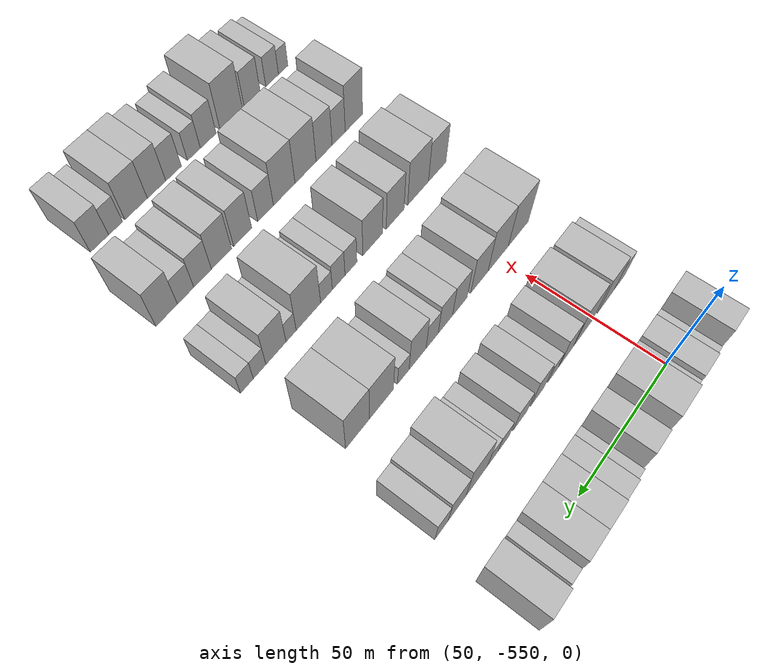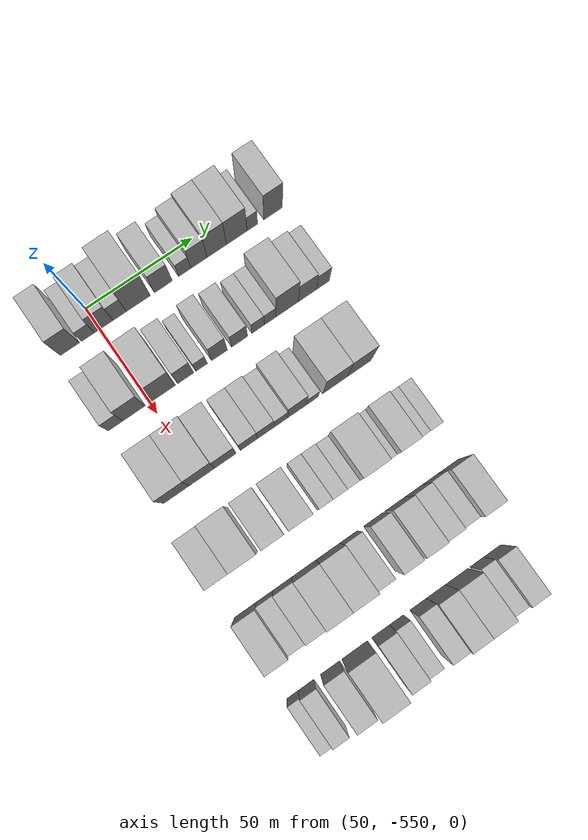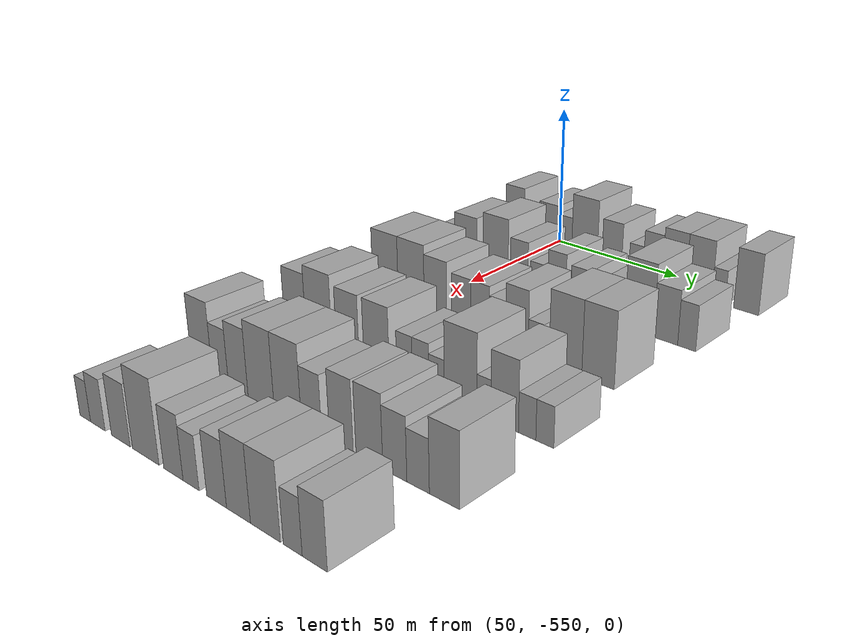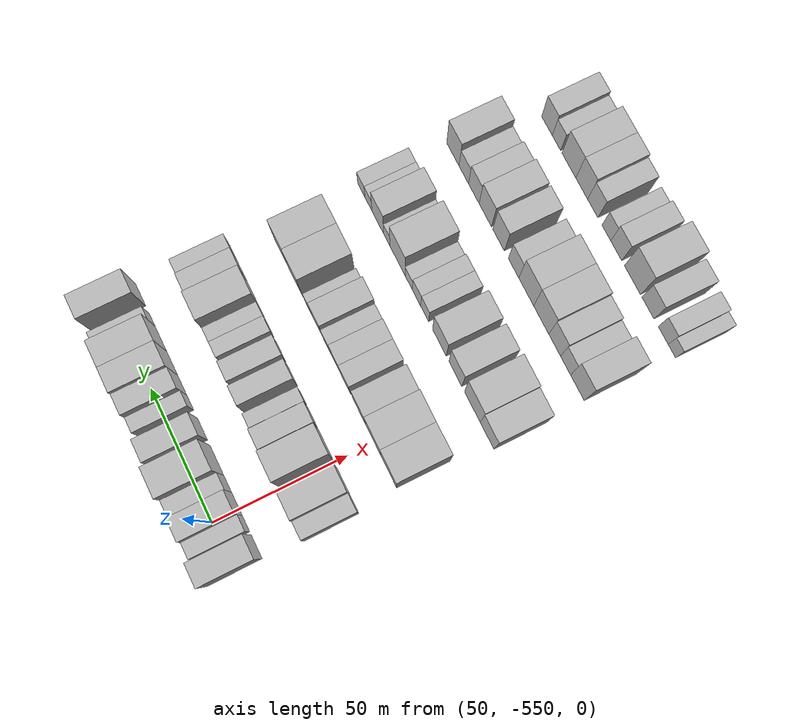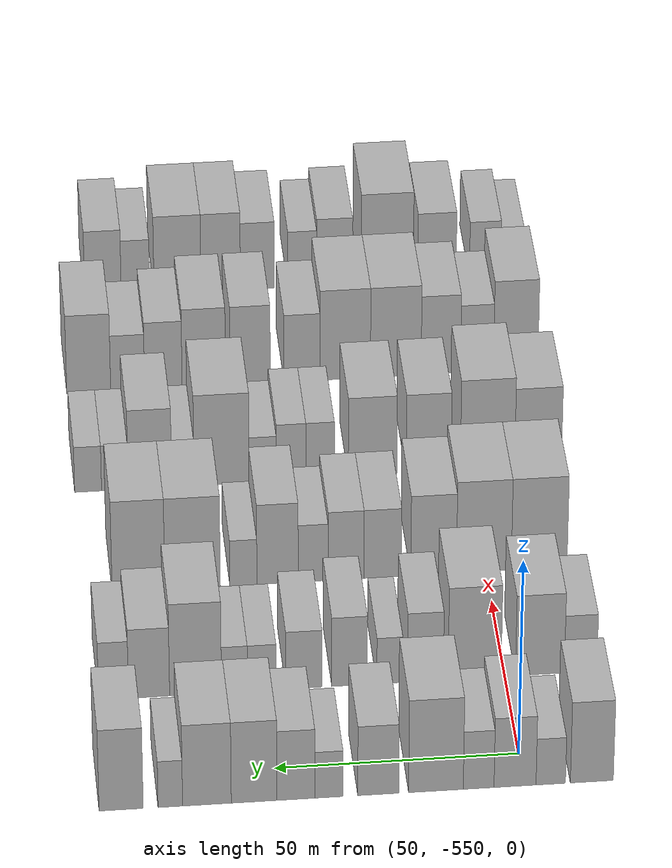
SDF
<sdf version="1.6">
 <world name="default">
  <model name="building_1">
   <static>1</static>
   <pose>50.0000 -563.6342 0 0.000000 0.000000 0.000000</pose>
   <link name="link">
    <pose>0 0 10.50 0 0 0</pose>
    <collision name="collision"><geometry><box><size>20.0000 8.7316 21.0000</size></box></geometry></collision>
    <visual name="visual">
     <cast_shadows>0</cast_shadows>
     <geometry><box><size>20.0000 8.7316 21.0000</size></box></geometry>
     <material>
      <script>
       <uri>model://HANNAS_wall/materials/scripts</uri>
       <uri>model://HANNAS_wall/materials/textures</uri>
       <name>vrc/HANNAS_wall</name>
      </script>
     </material>
    </visual>
   </link>
  </model>
  <model name="building_2">
   <static>1</static>
   <pose>50.0000 -555.2712 0 0.000000 0.000000 0.000000</pose>
   <link name="link">
    <pose>0 0 6.00 0 0 0</pose>
    <collision name="collision"><geometry><box><size>20.0000 5.9944 12.0000</size></box></geometry></collision>
    <visual name="visual">
     <cast_shadows>0</cast_shadows>
     <geometry><box><size>20.0000 5.9944 12.0000</size></box></geometry>
     <material>
      <script>
       <uri>model://HANNAS_wall/materials/scripts</uri>
       <uri>model://HANNAS_wall/materials/textures</uri>
       <name>vrc/HANNAS_wall</name>
      </script>
     </material>
    </visual>
   </link>
  </model>
  <model name="building_3">
   <static>1</static>
   <pose>50.0000 -548.0050 0 0.000000 0.000000 0.000000</pose>
   <link name="link">
    <pose>0 0 9.00 0 0 0</pose>
    <collision name="collision"><geometry><box><size>20.0000 8.5379 18.0000</size></box></geometry></collision>
    <visual name="visual">
     <cast_shadows>0</cast_shadows>
     <geometry><box><size>20.0000 8.5379 18.0000</size></box></geometry>
     <material>
      <script>
       <uri>model://HANNAS_wall/materials/scripts</uri>
       <uri>model://HANNAS_wall/materials/textures</uri>
       <name>vrc/HANNAS_wall</name>
      </script>
     </material>
    </visual>
   </link>
  </model>
  <model name="building_4">
   <static>1</static>
   <pose>50.0000 -540.6116 0 0.000000 0.000000 0.000000</pose>
   <link name="link">
    <pose>0 0 7.50 0 0 0</pose>
    <collision name="collision"><geometry><box><size>20.0000 6.2488 15.0000</size></box></geometry></collision>
    <visual name="visual">
     <cast_shadows>0</cast_shadows>
     <geometry><box><size>20.0000 6.2488 15.0000</size></box></geometry>
     <material>
      <script>
       <uri>model://HANNAS_wall/materials/scripts</uri>
       <uri>model://HANNAS_wall/materials/textures</uri>
       <name>vrc/HANNAS_wall</name>
      </script>
     </material>
    </visual>
   </link>
  </model>
  <model name="building_5">
   <static>1</static>
   <pose>50.0000 -531.9347 0 0.000000 0.000000 0.000000</pose>
   <link name="link">
    <pose>0 0 12.00 0 0 0</pose>
    <collision name="collision"><geometry><box><size>20.0000 11.1050 24.0000</size></box></geometry></collision>
    <visual name="visual">
     <cast_shadows>0</cast_shadows>
     <geometry><box><size>20.0000 11.1050 24.0000</size></box></geometry>
     <material>
      <script>
       <uri>model://HANNAS_wall/materials/scripts</uri>
       <uri>model://HANNAS_wall/materials/textures</uri>
       <name>vrc/HANNAS_wall</name>
      </script>
     </material>
    </visual>
   </link>
  </model>
  <model name="building_6">
   <static>1</static>
   <pose>50.0000 -520.2253 0 0.000000 0.000000 0.000000</pose>
   <link name="link">
    <pose>0 0 9.00 0 0 0</pose>
    <collision name="collision"><geometry><box><size>20.0000 8.3139 18.0000</size></box></geometry></collision>
    <visual name="visual">
     <cast_shadows>0</cast_shadows>
     <geometry><box><size>20.0000 8.3139 18.0000</size></box></geometry>
     <material>
      <script>
       <uri>model://HANNAS_wall/materials/scripts</uri>
       <uri>model://HANNAS_wall/materials/textures</uri>
       <name>vrc/HANNAS_wall</name>
      </script>
     </material>
    </visual>
   </link>
  </model>
  <model name="building_7">
   <static>1</static>
   <pose>50.0000 -510.2209 0 0.000000 0.000000 0.000000</pose>
   <link name="link">
    <pose>0 0 6.00 0 0 0</pose>
    <collision name="collision"><geometry><box><size>20.0000 5.6948 12.0000</size></box></geometry></collision>
    <visual name="visual">
     <cast_shadows>0</cast_shadows>
     <geometry><box><size>20.0000 5.6948 12.0000</size></box></geometry>
     <material>
      <script>
       <uri>model://HANNAS_wall/materials/scripts</uri>
       <uri>model://HANNAS_wall/materials/textures</uri>
       <name>vrc/HANNAS_wall</name>
      </script>
     </material>
    </visual>
   </link>
  </model>
  <model name="building_8">
   <static>1</static>
   <pose>50.0000 -503.5285 0 0.000000 0.000000 0.000000</pose>
   <link name="link">
    <pose>0 0 9.00 0 0 0</pose>
    <collision name="collision"><geometry><box><size>20.0000 7.6900 18.0000</size></box></geometry></collision>
    <visual name="visual">
     <cast_shadows>0</cast_shadows>
     <geometry><box><size>20.0000 7.6900 18.0000</size></box></geometry>
     <material>
      <script>
       <uri>model://HANNAS_wall/materials/scripts</uri>
       <uri>model://HANNAS_wall/materials/textures</uri>
       <name>vrc/HANNAS_wall</name>
      </script>
     </material>
    </visual>
   </link>
  </model>
  <model name="building_9">
   <static>1</static>
   <pose>50.0000 -495.0723 0 0.000000 0.000000 0.000000</pose>
   <link name="link">
    <pose>0 0 10.50 0 0 0</pose>
    <collision name="collision"><geometry><box><size>20.0000 9.2223 21.0000</size></box></geometry></collision>
    <visual name="visual">
     <cast_shadows>0</cast_shadows>
     <geometry><box><size>20.0000 9.2223 21.0000</size></box></geometry>
     <material>
      <script>
       <uri>model://HANNAS_wall/materials/scripts</uri>
       <uri>model://HANNAS_wall/materials/textures</uri>
       <name>vrc/HANNAS_wall</name>
      </script>
     </material>
    </visual>
   </link>
  </model>
  <model name="building_10">
   <static>1</static>
   <pose>50.0000 -485.5400 0 0.000000 0.000000 0.000000</pose>
   <link name="link">
    <pose>0 0 10.50 0 0 0</pose>
    <collision name="collision"><geometry><box><size>20.0000 9.8423 21.0000</size></box></geometry></collision>
    <visual name="visual">
     <cast_shadows>0</cast_shadows>
     <geometry><box><size>20.0000 9.8423 21.0000</size></box></geometry>
     <material>
      <script>
       <uri>model://HANNAS_wall/materials/scripts</uri>
       <uri>model://HANNAS_wall/materials/textures</uri>
       <name>vrc/HANNAS_wall</name>
      </script>
     </material>
    </visual>
   </link>
  </model>
  <model name="building_11">
   <static>1</static>
   <pose>50.0000 -478.1424 0 0.000000 0.000000 0.000000</pose>
   <link name="link">
    <pose>0 0 6.00 0 0 0</pose>
    <collision name="collision"><geometry><box><size>20.0000 4.9528 12.0000</size></box></geometry></collision>
    <visual name="visual">
     <cast_shadows>0</cast_shadows>
     <geometry><box><size>20.0000 4.9528 12.0000</size></box></geometry>
     <material>
      <script>
       <uri>model://HANNAS_wall/materials/scripts</uri>
       <uri>model://HANNAS_wall/materials/textures</uri>
       <name>vrc/HANNAS_wall</name>
      </script>
     </material>
    </visual>
   </link>
  </model>
  <model name="building_12">
   <static>1</static>
   <pose>50.0000 -468.2171 0 0.000000 0.000000 0.000000</pose>
   <link name="link">
    <pose>0 0 10.50 0 0 0</pose>
    <collision name="collision"><geometry><box><size>20.0000 8.8978 21.0000</size></box></geometry></collision>
    <visual name="visual">
     <cast_shadows>0</cast_shadows>
     <geometry><box><size>20.0000 8.8978 21.0000</size></box></geometry>
     <material>
      <script>
       <uri>model://HANNAS_wall/materials/scripts</uri>
       <uri>model://HANNAS_wall/materials/textures</uri>
       <name>vrc/HANNAS_wall</name>
      </script>
     </material>
    </visual>
   </link>
  </model>
  <model name="building_129">
   <static>1</static>
   <pose>85.0000 -565.6242 0 0.000000 0.000000 0.000000</pose>
   <link name="link">
    <pose>0 0 7.50 0 0 0</pose>
    <collision name="collision"><geometry><box><size>20.0000 6.7516 15.0000</size></box></geometry></collision>
    <visual name="visual">
     <cast_shadows>0</cast_shadows>
     <geometry><box><size>20.0000 6.7516 15.0000</size></box></geometry>
     <material>
      <script>
       <uri>model://HANNAS_wall/materials/scripts</uri>
       <uri>model://HANNAS_wall/materials/textures</uri>
       <name>vrc/HANNAS_wall</name>
      </script>
     </material>
    </visual>
   </link>
  </model>
  <model name="building_130">
   <static>1</static>
   <pose>85.0000 -557.1764 0 0.000000 0.000000 0.000000</pose>
   <link name="link">
    <pose>0 0 10.50 0 0 0</pose>
    <collision name="collision"><geometry><box><size>20.0000 10.1442 21.0000</size></box></geometry></collision>
    <visual name="visual">
     <cast_shadows>0</cast_shadows>
     <geometry><box><size>20.0000 10.1442 21.0000</size></box></geometry>
     <material>
      <script>
       <uri>model://HANNAS_wall/materials/scripts</uri>
       <uri>model://HANNAS_wall/materials/textures</uri>
       <name>vrc/HANNAS_wall</name>
      </script>
     </material>
    </visual>
   </link>
  </model>
  <model name="building_131">
   <static>1</static>
   <pose>85.0000 -543.6177 0 0.000000 0.000000 0.000000</pose>
   <link name="link">
    <pose>0 0 12.00 0 0 0</pose>
    <collision name="collision"><geometry><box><size>20.0000 10.9731 24.0000</size></box></geometry></collision>
    <visual name="visual">
     <cast_shadows>0</cast_shadows>
     <geometry><box><size>20.0000 10.9731 24.0000</size></box></geometry>
     <material>
      <script>
       <uri>model://HANNAS_wall/materials/scripts</uri>
       <uri>model://HANNAS_wall/materials/textures</uri>
       <name>vrc/HANNAS_wall</name>
      </script>
     </material>
    </visual>
   </link>
  </model>
  <model name="building_132">
   <static>1</static>
   <pose>85.0000 -533.4127 0 0.000000 0.000000 0.000000</pose>
   <link name="link">
    <pose>0 0 9.00 0 0 0</pose>
    <collision name="collision"><geometry><box><size>20.0000 7.4368 18.0000</size></box></geometry></collision>
    <visual name="visual">
     <cast_shadows>0</cast_shadows>
     <geometry><box><size>20.0000 7.4368 18.0000</size></box></geometry>
     <material>
      <script>
       <uri>model://HANNAS_wall/materials/scripts</uri>
       <uri>model://HANNAS_wall/materials/textures</uri>
       <name>vrc/HANNAS_wall</name>
      </script>
     </material>
    </visual>
   </link>
  </model>
  <model name="building_133">
   <static>1</static>
   <pose>85.0000 -526.0297 0 0.000000 0.000000 0.000000</pose>
   <link name="link">
    <pose>0 0 6.00 0 0 0</pose>
    <collision name="collision"><geometry><box><size>20.0000 5.3292 12.0000</size></box></geometry></collision>
    <visual name="visual">
     <cast_shadows>0</cast_shadows>
     <geometry><box><size>20.0000 5.3292 12.0000</size></box></geometry>
     <material>
      <script>
       <uri>model://HANNAS_wall/materials/scripts</uri>
       <uri>model://HANNAS_wall/materials/textures</uri>
       <name>vrc/HANNAS_wall</name>
      </script>
     </material>
    </visual>
   </link>
  </model>
  <model name="building_134">
   <static>1</static>
   <pose>85.0000 -517.7040 0 0.000000 0.000000 0.000000</pose>
   <link name="link">
    <pose>0 0 9.00 0 0 0</pose>
    <collision name="collision"><geometry><box><size>20.0000 7.3223 18.0000</size></box></geometry></collision>
    <visual name="visual">
     <cast_shadows>0</cast_shadows>
     <geometry><box><size>20.0000 7.3223 18.0000</size></box></geometry>
     <material>
      <script>
       <uri>model://HANNAS_wall/materials/scripts</uri>
       <uri>model://HANNAS_wall/materials/textures</uri>
       <name>vrc/HANNAS_wall</name>
      </script>
     </material>
    </visual>
   </link>
  </model>
  <model name="building_135">
   <static>1</static>
   <pose>85.0000 -508.2961 0 0.000000 0.000000 0.000000</pose>
   <link name="link">
    <pose>0 0 7.50 0 0 0</pose>
    <collision name="collision"><geometry><box><size>20.0000 7.4935 15.0000</size></box></geometry></collision>
    <visual name="visual">
     <cast_shadows>0</cast_shadows>
     <geometry><box><size>20.0000 7.4935 15.0000</size></box></geometry>
     <material>
      <script>
       <uri>model://HANNAS_wall/materials/scripts</uri>
       <uri>model://HANNAS_wall/materials/textures</uri>
       <name>vrc/HANNAS_wall</name>
      </script>
     </material>
    </visual>
   </link>
  </model>
  <model name="building_136">
   <static>1</static>
   <pose>85.0000 -499.5970 0 0.000000 0.000000 0.000000</pose>
   <link name="link">
    <pose>0 0 6.00 0 0 0</pose>
    <collision name="collision"><geometry><box><size>20.0000 5.9048 12.0000</size></box></geometry></collision>
    <visual name="visual">
     <cast_shadows>0</cast_shadows>
     <geometry><box><size>20.0000 5.9048 12.0000</size></box></geometry>
     <material>
      <script>
       <uri>model://HANNAS_wall/materials/scripts</uri>
       <uri>model://HANNAS_wall/materials/textures</uri>
       <name>vrc/HANNAS_wall</name>
      </script>
     </material>
    </visual>
   </link>
  </model>
  <model name="building_137">
   <static>1</static>
   <pose>85.0000 -493.9570 0 0.000000 0.000000 0.000000</pose>
   <link name="link">
    <pose>0 0 6.00 0 0 0</pose>
    <collision name="collision"><geometry><box><size>20.0000 5.3752 12.0000</size></box></geometry></collision>
    <visual name="visual">
     <cast_shadows>0</cast_shadows>
     <geometry><box><size>20.0000 5.3752 12.0000</size></box></geometry>
     <material>
      <script>
       <uri>model://HANNAS_wall/materials/scripts</uri>
       <uri>model://HANNAS_wall/materials/textures</uri>
       <name>vrc/HANNAS_wall</name>
      </script>
     </material>
    </visual>
   </link>
  </model>
  <model name="building_138">
   <static>1</static>
   <pose>85.0000 -485.9242 0 0.000000 0.000000 0.000000</pose>
   <link name="link">
    <pose>0 0 12.00 0 0 0</pose>
    <collision name="collision"><geometry><box><size>20.0000 10.6903 24.0000</size></box></geometry></collision>
    <visual name="visual">
     <cast_shadows>0</cast_shadows>
     <geometry><box><size>20.0000 10.6903 24.0000</size></box></geometry>
     <material>
      <script>
       <uri>model://HANNAS_wall/materials/scripts</uri>
       <uri>model://HANNAS_wall/materials/textures</uri>
       <name>vrc/HANNAS_wall</name>
      </script>
     </material>
    </visual>
   </link>
  </model>
  <model name="building_139">
   <static>1</static>
   <pose>85.0000 -476.3440 0 0.000000 0.000000 0.000000</pose>
   <link name="link">
    <pose>0 0 9.00 0 0 0</pose>
    <collision name="collision"><geometry><box><size>20.0000 8.4702 18.0000</size></box></geometry></collision>
    <visual name="visual">
     <cast_shadows>0</cast_shadows>
     <geometry><box><size>20.0000 8.4702 18.0000</size></box></geometry>
     <material>
      <script>
       <uri>model://HANNAS_wall/materials/scripts</uri>
       <uri>model://HANNAS_wall/materials/textures</uri>
       <name>vrc/HANNAS_wall</name>
      </script>
     </material>
    </visual>
   </link>
  </model>
  <model name="building_140">
   <static>1</static>
   <pose>85.0000 -469.0172 0 0.000000 0.000000 0.000000</pose>
   <link name="link">
    <pose>0 0 7.50 0 0 0</pose>
    <collision name="collision"><geometry><box><size>20.0000 6.1834 15.0000</size></box></geometry></collision>
    <visual name="visual">
     <cast_shadows>0</cast_shadows>
     <geometry><box><size>20.0000 6.1834 15.0000</size></box></geometry>
     <material>
      <script>
       <uri>model://HANNAS_wall/materials/scripts</uri>
       <uri>model://HANNAS_wall/materials/textures</uri>
       <name>vrc/HANNAS_wall</name>
      </script>
     </material>
    </visual>
   </link>
  </model>
  <model name="building_258">
   <static>1</static>
   <pose>120.0000 -561.1040 0 0.000000 0.000000 0.000000</pose>
   <link name="link">
    <pose>0 0 12.00 0 0 0</pose>
    <collision name="collision"><geometry><box><size>20.0000 11.7919 24.0000</size></box></geometry></collision>
    <visual name="visual">
     <cast_shadows>0</cast_shadows>
     <geometry><box><size>20.0000 11.7919 24.0000</size></box></geometry>
     <material>
      <script>
       <uri>model://HANNAS_wall/materials/scripts</uri>
       <uri>model://HANNAS_wall/materials/textures</uri>
       <name>vrc/HANNAS_wall</name>
      </script>
     </material>
    </visual>
   </link>
  </model>
  <model name="building_259">
   <static>1</static>
   <pose>120.0000 -549.4075 0 0.000000 0.000000 0.000000</pose>
   <link name="link">
    <pose>0 0 12.00 0 0 0</pose>
    <collision name="collision"><geometry><box><size>20.0000 11.6012 24.0000</size></box></geometry></collision>
    <visual name="visual">
     <cast_shadows>0</cast_shadows>
     <geometry><box><size>20.0000 11.6012 24.0000</size></box></geometry>
     <material>
      <script>
       <uri>model://HANNAS_wall/materials/scripts</uri>
       <uri>model://HANNAS_wall/materials/textures</uri>
       <name>vrc/HANNAS_wall</name>
      </script>
     </material>
    </visual>
   </link>
  </model>
  <model name="building_260">
   <static>1</static>
   <pose>120.0000 -538.7794 0 0.000000 0.000000 0.000000</pose>
   <link name="link">
    <pose>0 0 10.50 0 0 0</pose>
    <collision name="collision"><geometry><box><size>20.0000 9.6549 21.0000</size></box></geometry></collision>
    <visual name="visual">
     <cast_shadows>0</cast_shadows>
     <geometry><box><size>20.0000 9.6549 21.0000</size></box></geometry>
     <material>
      <script>
       <uri>model://HANNAS_wall/materials/scripts</uri>
       <uri>model://HANNAS_wall/materials/textures</uri>
       <name>vrc/HANNAS_wall</name>
      </script>
     </material>
    </visual>
   </link>
  </model>
  <model name="building_261">
   <static>1</static>
   <pose>120.0000 -528.0144 0 0.000000 0.000000 0.000000</pose>
   <link name="link">
    <pose>0 0 9.00 0 0 0</pose>
    <collision name="collision"><geometry><box><size>20.0000 7.8751 18.0000</size></box></geometry></collision>
    <visual name="visual">
     <cast_shadows>0</cast_shadows>
     <geometry><box><size>20.0000 7.8751 18.0000</size></box></geometry>
     <material>
      <script>
       <uri>model://HANNAS_wall/materials/scripts</uri>
       <uri>model://HANNAS_wall/materials/textures</uri>
       <name>vrc/HANNAS_wall</name>
      </script>
     </material>
    </visual>
   </link>
  </model>
  <model name="building_262">
   <static>1</static>
   <pose>120.0000 -520.2916 0 0.000000 0.000000 0.000000</pose>
   <link name="link">
    <pose>0 0 9.00 0 0 0</pose>
    <collision name="collision"><geometry><box><size>20.0000 7.5705 18.0000</size></box></geometry></collision>
    <visual name="visual">
     <cast_shadows>0</cast_shadows>
     <geometry><box><size>20.0000 7.5705 18.0000</size></box></geometry>
     <material>
      <script>
       <uri>model://HANNAS_wall/materials/scripts</uri>
       <uri>model://HANNAS_wall/materials/textures</uri>
       <name>vrc/HANNAS_wall</name>
      </script>
     </material>
    </visual>
   </link>
  </model>
  <model name="building_263">
   <static>1</static>
   <pose>120.0000 -513.3587 0 0.000000 0.000000 0.000000</pose>
   <link name="link">
    <pose>0 0 7.50 0 0 0</pose>
    <collision name="collision"><geometry><box><size>20.0000 6.2952 15.0000</size></box></geometry></collision>
    <visual name="visual">
     <cast_shadows>0</cast_shadows>
     <geometry><box><size>20.0000 6.2952 15.0000</size></box></geometry>
     <material>
      <script>
       <uri>model://HANNAS_wall/materials/scripts</uri>
       <uri>model://HANNAS_wall/materials/textures</uri>
       <name>vrc/HANNAS_wall</name>
      </script>
     </material>
    </visual>
   </link>
  </model>
  <model name="building_264">
   <static>1</static>
   <pose>120.0000 -505.8660 0 0.000000 0.000000 0.000000</pose>
   <link name="link">
    <pose>0 0 10.50 0 0 0</pose>
    <collision name="collision"><geometry><box><size>20.0000 8.6903 21.0000</size></box></geometry></collision>
    <visual name="visual">
     <cast_shadows>0</cast_shadows>
     <geometry><box><size>20.0000 8.6903 21.0000</size></box></geometry>
     <material>
      <script>
       <uri>model://HANNAS_wall/materials/scripts</uri>
       <uri>model://HANNAS_wall/materials/textures</uri>
       <name>vrc/HANNAS_wall</name>
      </script>
     </material>
    </visual>
   </link>
  </model>
  <model name="building_265">
   <static>1</static>
   <pose>120.0000 -498.6677 0 0.000000 0.000000 0.000000</pose>
   <link name="link">
    <pose>0 0 6.00 0 0 0</pose>
    <collision name="collision"><geometry><box><size>20.0000 5.7062 12.0000</size></box></geometry></collision>
    <visual name="visual">
     <cast_shadows>0</cast_shadows>
     <geometry><box><size>20.0000 5.7062 12.0000</size></box></geometry>
     <material>
      <script>
       <uri>model://HANNAS_wall/materials/scripts</uri>
       <uri>model://HANNAS_wall/materials/textures</uri>
       <name>vrc/HANNAS_wall</name>
      </script>
     </material>
    </visual>
   </link>
  </model>
  <model name="building_266">
   <static>1</static>
   <pose>120.0000 -487.9835 0 0.000000 0.000000 0.000000</pose>
   <link name="link">
    <pose>0 0 12.00 0 0 0</pose>
    <collision name="collision"><geometry><box><size>20.0000 11.6624 24.0000</size></box></geometry></collision>
    <visual name="visual">
     <cast_shadows>0</cast_shadows>
     <geometry><box><size>20.0000 11.6624 24.0000</size></box></geometry>
     <material>
      <script>
       <uri>model://HANNAS_wall/materials/scripts</uri>
       <uri>model://HANNAS_wall/materials/textures</uri>
       <name>vrc/HANNAS_wall</name>
      </script>
     </material>
    </visual>
   </link>
  </model>
  <model name="building_267">
   <static>1</static>
   <pose>120.0000 -476.6070 0 0.000000 0.000000 0.000000</pose>
   <link name="link">
    <pose>0 0 12.00 0 0 0</pose>
    <collision name="collision"><geometry><box><size>20.0000 11.0906 24.0000</size></box></geometry></collision>
    <visual name="visual">
     <cast_shadows>0</cast_shadows>
     <geometry><box><size>20.0000 11.0906 24.0000</size></box></geometry>
     <material>
      <script>
       <uri>model://HANNAS_wall/materials/scripts</uri>
       <uri>model://HANNAS_wall/materials/textures</uri>
       <name>vrc/HANNAS_wall</name>
      </script>
     </material>
    </visual>
   </link>
  </model>
  <model name="building_382">
   <static>1</static>
   <pose>155.0000 -564.9648 0 0.000000 0.000000 0.000000</pose>
   <link name="link">
    <pose>0 0 10.50 0 0 0</pose>
    <collision name="collision"><geometry><box><size>20.0000 10.0704 21.0000</size></box></geometry></collision>
    <visual name="visual">
     <cast_shadows>0</cast_shadows>
     <geometry><box><size>20.0000 10.0704 21.0000</size></box></geometry>
     <material>
      <script>
       <uri>model://HANNAS_wall/materials/scripts</uri>
       <uri>model://HANNAS_wall/materials/textures</uri>
       <name>vrc/HANNAS_wall</name>
      </script>
     </material>
    </visual>
   </link>
  </model>
  <model name="building_383">
   <static>1</static>
   <pose>155.0000 -554.0706 0 0.000000 0.000000 0.000000</pose>
   <link name="link">
    <pose>0 0 12.00 0 0 0</pose>
    <collision name="collision"><geometry><box><size>20.0000 11.7180 24.0000</size></box></geometry></collision>
    <visual name="visual">
     <cast_shadows>0</cast_shadows>
     <geometry><box><size>20.0000 11.7180 24.0000</size></box></geometry>
     <material>
      <script>
       <uri>model://HANNAS_wall/materials/scripts</uri>
       <uri>model://HANNAS_wall/materials/textures</uri>
       <name>vrc/HANNAS_wall</name>
      </script>
     </material>
    </visual>
   </link>
  </model>
  <model name="building_384">
   <static>1</static>
   <pose>155.0000 -541.3635 0 0.000000 0.000000 0.000000</pose>
   <link name="link">
    <pose>0 0 10.50 0 0 0</pose>
    <collision name="collision"><geometry><box><size>20.0000 9.6962 21.0000</size></box></geometry></collision>
    <visual name="visual">
     <cast_shadows>0</cast_shadows>
     <geometry><box><size>20.0000 9.6962 21.0000</size></box></geometry>
     <material>
      <script>
       <uri>model://HANNAS_wall/materials/scripts</uri>
       <uri>model://HANNAS_wall/materials/textures</uri>
       <name>vrc/HANNAS_wall</name>
      </script>
     </material>
    </visual>
   </link>
  </model>
  <model name="building_385">
   <static>1</static>
   <pose>155.0000 -529.2990 0 0.000000 0.000000 0.000000</pose>
   <link name="link">
    <pose>0 0 10.50 0 0 0</pose>
    <collision name="collision"><geometry><box><size>20.0000 10.4327 21.0000</size></box></geometry></collision>
    <visual name="visual">
     <cast_shadows>0</cast_shadows>
     <geometry><box><size>20.0000 10.4327 21.0000</size></box></geometry>
     <material>
      <script>
       <uri>model://HANNAS_wall/materials/scripts</uri>
       <uri>model://HANNAS_wall/materials/textures</uri>
       <name>vrc/HANNAS_wall</name>
      </script>
     </material>
    </visual>
   </link>
  </model>
  <model name="building_386">
   <static>1</static>
   <pose>155.0000 -518.0294 0 0.000000 0.000000 0.000000</pose>
   <link name="link">
    <pose>0 0 7.50 0 0 0</pose>
    <collision name="collision"><geometry><box><size>20.0000 6.1067 15.0000</size></box></geometry></collision>
    <visual name="visual">
     <cast_shadows>0</cast_shadows>
     <geometry><box><size>20.0000 6.1067 15.0000</size></box></geometry>
     <material>
      <script>
       <uri>model://HANNAS_wall/materials/scripts</uri>
       <uri>model://HANNAS_wall/materials/textures</uri>
       <name>vrc/HANNAS_wall</name>
      </script>
     </material>
    </visual>
   </link>
  </model>
  <model name="building_387">
   <static>1</static>
   <pose>155.0000 -511.7922 0 0.000000 0.000000 0.000000</pose>
   <link name="link">
    <pose>0 0 7.50 0 0 0</pose>
    <collision name="collision"><geometry><box><size>20.0000 6.3676 15.0000</size></box></geometry></collision>
    <visual name="visual">
     <cast_shadows>0</cast_shadows>
     <geometry><box><size>20.0000 6.3676 15.0000</size></box></geometry>
     <material>
      <script>
       <uri>model://HANNAS_wall/materials/scripts</uri>
       <uri>model://HANNAS_wall/materials/textures</uri>
       <name>vrc/HANNAS_wall</name>
      </script>
     </material>
    </visual>
   </link>
  </model>
  <model name="building_388">
   <static>1</static>
   <pose>155.0000 -505.7018 0 0.000000 0.000000 0.000000</pose>
   <link name="link">
    <pose>0 0 6.00 0 0 0</pose>
    <collision name="collision"><geometry><box><size>20.0000 5.8132 12.0000</size></box></geometry></collision>
    <visual name="visual">
     <cast_shadows>0</cast_shadows>
     <geometry><box><size>20.0000 5.8132 12.0000</size></box></geometry>
     <material>
      <script>
       <uri>model://HANNAS_wall/materials/scripts</uri>
       <uri>model://HANNAS_wall/materials/textures</uri>
       <name>vrc/HANNAS_wall</name>
      </script>
     </material>
    </visual>
   </link>
  </model>
  <model name="building_389">
   <static>1</static>
   <pose>155.0000 -496.8894 0 0.000000 0.000000 0.000000</pose>
   <link name="link">
    <pose>0 0 12.00 0 0 0</pose>
    <collision name="collision"><geometry><box><size>20.0000 11.8117 24.0000</size></box></geometry></collision>
    <visual name="visual">
     <cast_shadows>0</cast_shadows>
     <geometry><box><size>20.0000 11.8117 24.0000</size></box></geometry>
     <material>
      <script>
       <uri>model://HANNAS_wall/materials/scripts</uri>
       <uri>model://HANNAS_wall/materials/textures</uri>
       <name>vrc/HANNAS_wall</name>
      </script>
     </material>
    </visual>
   </link>
  </model>
  <model name="building_390">
   <static>1</static>
   <pose>155.0000 -488.5780 0 0.000000 0.000000 0.000000</pose>
   <link name="link">
    <pose>0 0 6.00 0 0 0</pose>
    <collision name="collision"><geometry><box><size>20.0000 4.8112 12.0000</size></box></geometry></collision>
    <visual name="visual">
     <cast_shadows>0</cast_shadows>
     <geometry><box><size>20.0000 4.8112 12.0000</size></box></geometry>
     <material>
      <script>
       <uri>model://HANNAS_wall/materials/scripts</uri>
       <uri>model://HANNAS_wall/materials/textures</uri>
       <name>vrc/HANNAS_wall</name>
      </script>
     </material>
    </visual>
   </link>
  </model>
  <model name="building_391">
   <static>1</static>
   <pose>155.0000 -481.5006 0 0.000000 0.000000 0.000000</pose>
   <link name="link">
    <pose>0 0 10.50 0 0 0</pose>
    <collision name="collision"><geometry><box><size>20.0000 9.3437 21.0000</size></box></geometry></collision>
    <visual name="visual">
     <cast_shadows>0</cast_shadows>
     <geometry><box><size>20.0000 9.3437 21.0000</size></box></geometry>
     <material>
      <script>
       <uri>model://HANNAS_wall/materials/scripts</uri>
       <uri>model://HANNAS_wall/materials/textures</uri>
       <name>vrc/HANNAS_wall</name>
      </script>
     </material>
    </visual>
   </link>
  </model>
  <model name="building_392">
   <static>1</static>
   <pose>155.0000 -473.9845 0 0.000000 0.000000 0.000000</pose>
   <link name="link">
    <pose>0 0 6.00 0 0 0</pose>
    <collision name="collision"><geometry><box><size>20.0000 5.6885 12.0000</size></box></geometry></collision>
    <visual name="visual">
     <cast_shadows>0</cast_shadows>
     <geometry><box><size>20.0000 5.6885 12.0000</size></box></geometry>
     <material>
      <script>
       <uri>model://HANNAS_wall/materials/scripts</uri>
       <uri>model://HANNAS_wall/materials/textures</uri>
       <name>vrc/HANNAS_wall</name>
      </script>
     </material>
    </visual>
   </link>
  </model>
  <model name="building_393">
   <static>1</static>
   <pose>155.0000 -468.2638 0 0.000000 0.000000 0.000000</pose>
   <link name="link">
    <pose>0 0 6.00 0 0 0</pose>
    <collision name="collision"><geometry><box><size>20.0000 5.7528 12.0000</size></box></geometry></collision>
    <visual name="visual">
     <cast_shadows>0</cast_shadows>
     <geometry><box><size>20.0000 5.7528 12.0000</size></box></geometry>
     <material>
      <script>
       <uri>model://HANNAS_wall/materials/scripts</uri>
       <uri>model://HANNAS_wall/materials/textures</uri>
       <name>vrc/HANNAS_wall</name>
      </script>
     </material>
    </visual>
   </link>
  </model>
  <model name="building_507">
   <static>1</static>
   <pose>190.0000 -564.1345 0 0.000000 0.000000 0.000000</pose>
   <link name="link">
    <pose>0 0 12.00 0 0 0</pose>
    <collision name="collision"><geometry><box><size>20.0000 9.7309 24.0000</size></box></geometry></collision>
    <visual name="visual">
     <cast_shadows>0</cast_shadows>
     <geometry><box><size>20.0000 9.7309 24.0000</size></box></geometry>
     <material>
      <script>
       <uri>model://HANNAS_wall/materials/scripts</uri>
       <uri>model://HANNAS_wall/materials/textures</uri>
       <name>vrc/HANNAS_wall</name>
      </script>
     </material>
    </visual>
   </link>
  </model>
  <model name="building_508">
   <static>1</static>
   <pose>190.0000 -555.6352 0 0.000000 0.000000 0.000000</pose>
   <link name="link">
    <pose>0 0 9.00 0 0 0</pose>
    <collision name="collision"><geometry><box><size>20.0000 7.2676 18.0000</size></box></geometry></collision>
    <visual name="visual">
     <cast_shadows>0</cast_shadows>
     <geometry><box><size>20.0000 7.2676 18.0000</size></box></geometry>
     <material>
      <script>
       <uri>model://HANNAS_wall/materials/scripts</uri>
       <uri>model://HANNAS_wall/materials/textures</uri>
       <name>vrc/HANNAS_wall</name>
      </script>
     </material>
    </visual>
   </link>
  </model>
  <model name="building_509">
   <static>1</static>
   <pose>190.0000 -547.6839 0 0.000000 0.000000 0.000000</pose>
   <link name="link">
    <pose>0 0 10.50 0 0 0</pose>
    <collision name="collision"><geometry><box><size>20.0000 8.6349 21.0000</size></box></geometry></collision>
    <visual name="visual">
     <cast_shadows>0</cast_shadows>
     <geometry><box><size>20.0000 8.6349 21.0000</size></box></geometry>
     <material>
      <script>
       <uri>model://HANNAS_wall/materials/scripts</uri>
       <uri>model://HANNAS_wall/materials/textures</uri>
       <name>vrc/HANNAS_wall</name>
      </script>
     </material>
    </visual>
   </link>
  </model>
  <model name="building_510">
   <static>1</static>
   <pose>190.0000 -537.8052 0 0.000000 0.000000 0.000000</pose>
   <link name="link">
    <pose>0 0 12.00 0 0 0</pose>
    <collision name="collision"><geometry><box><size>20.0000 11.1224 24.0000</size></box></geometry></collision>
    <visual name="visual">
     <cast_shadows>0</cast_shadows>
     <geometry><box><size>20.0000 11.1224 24.0000</size></box></geometry>
     <material>
      <script>
       <uri>model://HANNAS_wall/materials/scripts</uri>
       <uri>model://HANNAS_wall/materials/textures</uri>
       <name>vrc/HANNAS_wall</name>
      </script>
     </material>
    </visual>
   </link>
  </model>
  <model name="building_511">
   <static>1</static>
   <pose>190.0000 -526.7146 0 0.000000 0.000000 0.000000</pose>
   <link name="link">
    <pose>0 0 12.00 0 0 0</pose>
    <collision name="collision"><geometry><box><size>20.0000 11.0588 24.0000</size></box></geometry></collision>
    <visual name="visual">
     <cast_shadows>0</cast_shadows>
     <geometry><box><size>20.0000 11.0588 24.0000</size></box></geometry>
     <material>
      <script>
       <uri>model://HANNAS_wall/materials/scripts</uri>
       <uri>model://HANNAS_wall/materials/textures</uri>
       <name>vrc/HANNAS_wall</name>
      </script>
     </material>
    </visual>
   </link>
  </model>
  <model name="building_512">
   <static>1</static>
   <pose>190.0000 -517.2482 0 0.000000 0.000000 0.000000</pose>
   <link name="link">
    <pose>0 0 9.00 0 0 0</pose>
    <collision name="collision"><geometry><box><size>20.0000 7.8741 18.0000</size></box></geometry></collision>
    <visual name="visual">
     <cast_shadows>0</cast_shadows>
     <geometry><box><size>20.0000 7.8741 18.0000</size></box></geometry>
     <material>
      <script>
       <uri>model://HANNAS_wall/materials/scripts</uri>
       <uri>model://HANNAS_wall/materials/textures</uri>
       <name>vrc/HANNAS_wall</name>
      </script>
     </material>
    </visual>
   </link>
  </model>
  <model name="building_513">
   <static>1</static>
   <pose>190.0000 -505.9178 0 0.000000 0.000000 0.000000</pose>
   <link name="link">
    <pose>0 0 10.50 0 0 0</pose>
    <collision name="collision"><geometry><box><size>20.0000 8.7867 21.0000</size></box></geometry></collision>
    <visual name="visual">
     <cast_shadows>0</cast_shadows>
     <geometry><box><size>20.0000 8.7867 21.0000</size></box></geometry>
     <material>
      <script>
       <uri>model://HANNAS_wall/materials/scripts</uri>
       <uri>model://HANNAS_wall/materials/textures</uri>
       <name>vrc/HANNAS_wall</name>
      </script>
     </material>
    </visual>
   </link>
  </model>
  <model name="building_514">
   <static>1</static>
   <pose>190.0000 -495.7753 0 0.000000 0.000000 0.000000</pose>
   <link name="link">
    <pose>0 0 10.50 0 0 0</pose>
    <collision name="collision"><geometry><box><size>20.0000 9.4982 21.0000</size></box></geometry></collision>
    <visual name="visual">
     <cast_shadows>0</cast_shadows>
     <geometry><box><size>20.0000 9.4982 21.0000</size></box></geometry>
     <material>
      <script>
       <uri>model://HANNAS_wall/materials/scripts</uri>
       <uri>model://HANNAS_wall/materials/textures</uri>
       <name>vrc/HANNAS_wall</name>
      </script>
     </material>
    </visual>
   </link>
  </model>
  <model name="building_515">
   <static>1</static>
   <pose>190.0000 -486.9339 0 0.000000 0.000000 0.000000</pose>
   <link name="link">
    <pose>0 0 9.00 0 0 0</pose>
    <collision name="collision"><geometry><box><size>20.0000 8.1846 18.0000</size></box></geometry></collision>
    <visual name="visual">
     <cast_shadows>0</cast_shadows>
     <geometry><box><size>20.0000 8.1846 18.0000</size></box></geometry>
     <material>
      <script>
       <uri>model://HANNAS_wall/materials/scripts</uri>
       <uri>model://HANNAS_wall/materials/textures</uri>
       <name>vrc/HANNAS_wall</name>
      </script>
     </material>
    </visual>
   </link>
  </model>
  <model name="building_516">
   <static>1</static>
   <pose>190.0000 -479.1368 0 0.000000 0.000000 0.000000</pose>
   <link name="link">
    <pose>0 0 7.50 0 0 0</pose>
    <collision name="collision"><geometry><box><size>20.0000 7.4097 15.0000</size></box></geometry></collision>
    <visual name="visual">
     <cast_shadows>0</cast_shadows>
     <geometry><box><size>20.0000 7.4097 15.0000</size></box></geometry>
     <material>
      <script>
       <uri>model://HANNAS_wall/materials/scripts</uri>
       <uri>model://HANNAS_wall/materials/textures</uri>
       <name>vrc/HANNAS_wall</name>
      </script>
     </material>
    </visual>
   </link>
  </model>
  <model name="building_517">
   <static>1</static>
   <pose>190.0000 -470.6432 0 0.000000 0.000000 0.000000</pose>
   <link name="link">
    <pose>0 0 10.50 0 0 0</pose>
    <collision name="collision"><geometry><box><size>20.0000 9.5775 21.0000</size></box></geometry></collision>
    <visual name="visual">
     <cast_shadows>0</cast_shadows>
     <geometry><box><size>20.0000 9.5775 21.0000</size></box></geometry>
     <material>
      <script>
       <uri>model://HANNAS_wall/materials/scripts</uri>
       <uri>model://HANNAS_wall/materials/textures</uri>
       <name>vrc/HANNAS_wall</name>
      </script>
     </material>
    </visual>
   </link>
  </model>
  <model name="building_630">
   <static>1</static>
   <pose>225.0000 -567.3916 0 0.000000 0.000000 0.000000</pose>
   <link name="link">
    <pose>0 0 6.00 0 0 0</pose>
    <collision name="collision"><geometry><box><size>20.0000 5.2169 12.0000</size></box></geometry></collision>
    <visual name="visual">
     <cast_shadows>0</cast_shadows>
     <geometry><box><size>20.0000 5.2169 12.0000</size></box></geometry>
     <material>
      <script>
       <uri>model://HANNAS_wall/materials/scripts</uri>
       <uri>model://HANNAS_wall/materials/textures</uri>
       <name>vrc/HANNAS_wall</name>
      </script>
     </material>
    </visual>
   </link>
  </model>
  <model name="building_631">
   <static>1</static>
   <pose>225.0000 -561.2870 0 0.000000 0.000000 0.000000</pose>
   <link name="link">
    <pose>0 0 7.50 0 0 0</pose>
    <collision name="collision"><geometry><box><size>20.0000 6.9923 15.0000</size></box></geometry></collision>
    <visual name="visual">
     <cast_shadows>0</cast_shadows>
     <geometry><box><size>20.0000 6.9923 15.0000</size></box></geometry>
     <material>
      <script>
       <uri>model://HANNAS_wall/materials/scripts</uri>
       <uri>model://HANNAS_wall/materials/textures</uri>
       <name>vrc/HANNAS_wall</name>
      </script>
     </material>
    </visual>
   </link>
  </model>
  <model name="building_632">
   <static>1</static>
   <pose>225.0000 -550.5041 0 0.000000 0.000000 0.000000</pose>
   <link name="link">
    <pose>0 0 9.00 0 0 0</pose>
    <collision name="collision"><geometry><box><size>20.0000 8.5734 18.0000</size></box></geometry></collision>
    <visual name="visual">
     <cast_shadows>0</cast_shadows>
     <geometry><box><size>20.0000 8.5734 18.0000</size></box></geometry>
     <material>
      <script>
       <uri>model://HANNAS_wall/materials/scripts</uri>
       <uri>model://HANNAS_wall/materials/textures</uri>
       <name>vrc/HANNAS_wall</name>
      </script>
     </material>
    </visual>
   </link>
  </model>
  <model name="building_633">
   <static>1</static>
   <pose>225.0000 -539.4125 0 0.000000 0.000000 0.000000</pose>
   <link name="link">
    <pose>0 0 12.00 0 0 0</pose>
    <collision name="collision"><geometry><box><size>20.0000 11.6098 24.0000</size></box></geometry></collision>
    <visual name="visual">
     <cast_shadows>0</cast_shadows>
     <geometry><box><size>20.0000 11.6098 24.0000</size></box></geometry>
     <material>
      <script>
       <uri>model://HANNAS_wall/materials/scripts</uri>
       <uri>model://HANNAS_wall/materials/textures</uri>
       <name>vrc/HANNAS_wall</name>
      </script>
     </material>
    </visual>
   </link>
  </model>
  <model name="building_634">
   <static>1</static>
   <pose>225.0000 -527.6131 0 0.000000 0.000000 0.000000</pose>
   <link name="link">
    <pose>0 0 9.00 0 0 0</pose>
    <collision name="collision"><geometry><box><size>20.0000 7.9890 18.0000</size></box></geometry></collision>
    <visual name="visual">
     <cast_shadows>0</cast_shadows>
     <geometry><box><size>20.0000 7.9890 18.0000</size></box></geometry>
     <material>
      <script>
       <uri>model://HANNAS_wall/materials/scripts</uri>
       <uri>model://HANNAS_wall/materials/textures</uri>
       <name>vrc/HANNAS_wall</name>
      </script>
     </material>
    </visual>
   </link>
  </model>
  <model name="building_635">
   <static>1</static>
   <pose>225.0000 -520.4167 0 0.000000 0.000000 0.000000</pose>
   <link name="link">
    <pose>0 0 7.50 0 0 0</pose>
    <collision name="collision"><geometry><box><size>20.0000 6.4038 15.0000</size></box></geometry></collision>
    <visual name="visual">
     <cast_shadows>0</cast_shadows>
     <geometry><box><size>20.0000 6.4038 15.0000</size></box></geometry>
     <material>
      <script>
       <uri>model://HANNAS_wall/materials/scripts</uri>
       <uri>model://HANNAS_wall/materials/textures</uri>
       <name>vrc/HANNAS_wall</name>
      </script>
     </material>
    </visual>
   </link>
  </model>
  <model name="building_636">
   <static>1</static>
   <pose>225.0000 -510.4294 0 0.000000 0.000000 0.000000</pose>
   <link name="link">
    <pose>0 0 9.00 0 0 0</pose>
    <collision name="collision"><geometry><box><size>20.0000 7.5708 18.0000</size></box></geometry></collision>
    <visual name="visual">
     <cast_shadows>0</cast_shadows>
     <geometry><box><size>20.0000 7.5708 18.0000</size></box></geometry>
     <material>
      <script>
       <uri>model://HANNAS_wall/materials/scripts</uri>
       <uri>model://HANNAS_wall/materials/textures</uri>
       <name>vrc/HANNAS_wall</name>
      </script>
     </material>
    </visual>
   </link>
  </model>
  <model name="building_637">
   <static>1</static>
   <pose>225.0000 -502.2523 0 0.000000 0.000000 0.000000</pose>
   <link name="link">
    <pose>0 0 10.50 0 0 0</pose>
    <collision name="collision"><geometry><box><size>20.0000 8.7834 21.0000</size></box></geometry></collision>
    <visual name="visual">
     <cast_shadows>0</cast_shadows>
     <geometry><box><size>20.0000 8.7834 21.0000</size></box></geometry>
     <material>
      <script>
       <uri>model://HANNAS_wall/materials/scripts</uri>
       <uri>model://HANNAS_wall/materials/textures</uri>
       <name>vrc/HANNAS_wall</name>
      </script>
     </material>
    </visual>
   </link>
  </model>
  <model name="building_638">
   <static>1</static>
   <pose>225.0000 -492.6384 0 0.000000 0.000000 0.000000</pose>
   <link name="link">
    <pose>0 0 10.50 0 0 0</pose>
    <collision name="collision"><geometry><box><size>20.0000 10.4444 21.0000</size></box></geometry></collision>
    <visual name="visual">
     <cast_shadows>0</cast_shadows>
     <geometry><box><size>20.0000 10.4444 21.0000</size></box></geometry>
     <material>
      <script>
       <uri>model://HANNAS_wall/materials/scripts</uri>
       <uri>model://HANNAS_wall/materials/textures</uri>
       <name>vrc/HANNAS_wall</name>
      </script>
     </material>
    </visual>
   </link>
  </model>
  <model name="building_639">
   <static>1</static>
   <pose>225.0000 -483.2607 0 0.000000 0.000000 0.000000</pose>
   <link name="link">
    <pose>0 0 7.50 0 0 0</pose>
    <collision name="collision"><geometry><box><size>20.0000 6.3110 15.0000</size></box></geometry></collision>
    <visual name="visual">
     <cast_shadows>0</cast_shadows>
     <geometry><box><size>20.0000 6.3110 15.0000</size></box></geometry>
     <material>
      <script>
       <uri>model://HANNAS_wall/materials/scripts</uri>
       <uri>model://HANNAS_wall/materials/textures</uri>
       <name>vrc/HANNAS_wall</name>
      </script>
     </material>
    </visual>
   </link>
  </model>
  <model name="building_640">
   <static>1</static>
   <pose>225.0000 -476.0536 0 0.000000 0.000000 0.000000</pose>
   <link name="link">
    <pose>0 0 9.00 0 0 0</pose>
    <collision name="collision"><geometry><box><size>20.0000 8.1032 18.0000</size></box></geometry></collision>
    <visual name="visual">
     <cast_shadows>0</cast_shadows>
     <geometry><box><size>20.0000 8.1032 18.0000</size></box></geometry>
     <material>
      <script>
       <uri>model://HANNAS_wall/materials/scripts</uri>
       <uri>model://HANNAS_wall/materials/textures</uri>
       <name>vrc/HANNAS_wall</name>
      </script>
     </material>
    </visual>
   </link>
  </model>
 </world>
</sdf>
